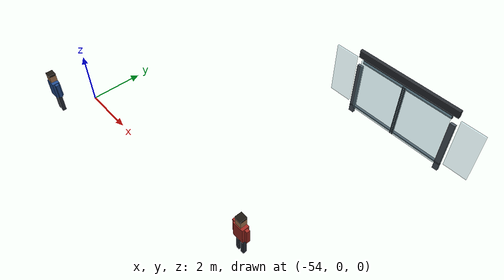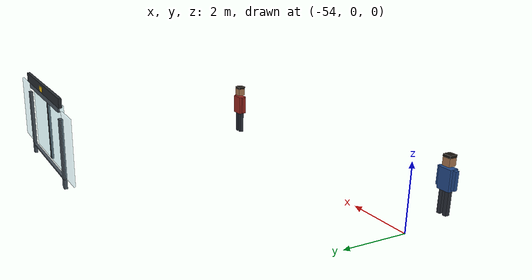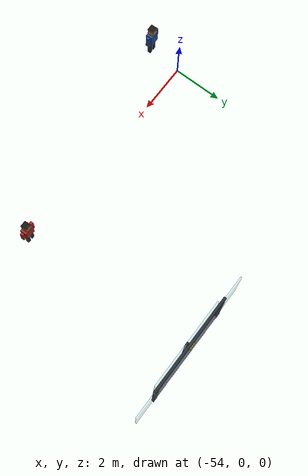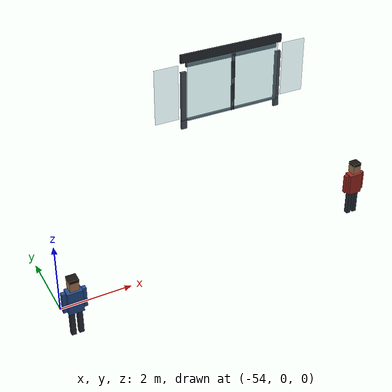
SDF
<sdf version="1.8">
 <world name="metro_station">
  <model name="psd_unit_02">
   <static>true</static>
   <pose>-45.0 0 0 0 0 0</pose>
   <link name="psd_frame_02">
    <collision name="psd_post_left_col_02">
     <pose>-1.90 7.02 1.10 0 0 0</pose>
     <geometry><box><size>0.20 0.10 2.20</size></box></geometry>
    </collision>
    <collision name="psd_post_right_col_02">
     <pose>1.90 7.02 1.10 0 0 0</pose>
     <geometry><box><size>0.20 0.10 2.20</size></box></geometry>
    </collision>
    <collision name="psd_header_col_02">
     <pose>0 7.02 2.70 0 0 0</pose>
     <geometry><box><size>4.00 0.10 0.30</size></box></geometry>
    </collision>
    <collision name="psd_threshold_col_02">
     <pose>0 7.02 0.325 0 0 0</pose>
     <geometry><box><size>4.00 0.10 0.05</size></box></geometry>
    </collision>
    <visual name="psd_post_left_vis_02">
     <pose>-1.90 7.02 1.10 0 0 0</pose>
     <geometry><box><size>0.20 0.10 2.20</size></box></geometry>
     <material>
      <ambient>0.22 0.25 0.28 1</ambient>
      <diffuse>0.30 0.34 0.38 1</diffuse>
      <specular>0.35 0.35 0.35 1</specular>
     </material>
    </visual>
    <visual name="psd_post_right_vis_02">
     <pose>1.90 7.02 1.10 0 0 0</pose>
     <geometry><box><size>0.20 0.10 2.20</size></box></geometry>
     <material>
      <ambient>0.22 0.25 0.28 1</ambient>
      <diffuse>0.30 0.34 0.38 1</diffuse>
      <specular>0.35 0.35 0.35 1</specular>
     </material>
    </visual>
    <visual name="psd_header_vis_02">
     <pose>0 7.02 2.70 0 0 0</pose>
     <geometry><box><size>4.00 0.10 0.30</size></box></geometry>
     <material><ambient>0.10 0.12 0.14 1</ambient><diffuse>0.16 0.18 0.20 1</diffuse></material>
    </visual>
    <visual name="psd_threshold_vis_02">
     <pose>0 7.02 0.325 0 0 0</pose>
     <geometry><box><size>4.00 0.10 0.05</size></box></geometry>
     <material>
      <ambient>0.22 0.25 0.28 1</ambient>
      <diffuse>0.30 0.34 0.38 1</diffuse>
      <specular>0.35 0.35 0.35 1</specular>
     </material>
    </visual>
    <visual name="psd_glass_left_vis_02">
     <pose>-2.55 7.02 1.45 0 0 0</pose>
     <transparency>0.65</transparency>
     <geometry><box><size>0.90 0.05 2.05</size></box></geometry>
     <material><ambient>0.55 0.75 0.82 1</ambient><diffuse>0.65 0.85 0.92 1</diffuse></material>
    </visual>
    <visual name="psd_glass_right_vis_02">
     <pose>2.55 7.02 1.45 0 0 0</pose>
     <transparency>0.65</transparency>
     <geometry><box><size>0.90 0.05 2.05</size></box></geometry>
     <material><ambient>0.55 0.75 0.82 1</ambient><diffuse>0.65 0.85 0.92 1</diffuse></material>
    </visual>
    <visual name="psd_unit_label_vis_02">
     <pose>0 7.10 2.70 0 0 0</pose>
     <geometry><box><size>0.30 0.02 0.16</size></box></geometry>
     <material>
      <ambient>0.95 0.72 0.04 1</ambient>
      <diffuse>0.98 0.78 0.08 1</diffuse>
      <emissive>0.35 0.25 0.02 1</emissive>
     </material>
    </visual>
    <visual name="psd_upper_panel_vis_02">
     <pose>0 7.02 2.46 0 0 0</pose>
     <geometry><box><size>3.60 0.06 0.18</size></box></geometry>
     <material>
      <ambient>0.22 0.25 0.28 1</ambient>
      <diffuse>0.30 0.34 0.38 1</diffuse>
      <specular>0.35 0.35 0.35 1</specular>
     </material>
    </visual>
   </link>
  </model>
  <model name="psd_door_02">
   <static>false</static>
   <allow_auto_disable>false</allow_auto_disable>
   <pose>-45.0 0 0 0 0 0</pose>
   <link name="psd_base_02">
    <inertial>
     <mass>1.0</mass>
     <inertia><ixx>0.001</ixx><ixy>0</ixy><ixz>0</ixz><iyy>0.001</iyy><iyz>0</iyz><izz>0.001</izz></inertia>
    </inertial>
   </link>
   <link name="psd_left_02">
    <pose>-0.90 6.90 1.45 0 0 0</pose>
    <inertial>
     <mass>120.0</mass>
     <inertia><ixx>48.436</ixx><ixy>0</ixy><ixz>0</ixz><iyy>80.800</iyy><iyz>0</iyz><izz>32.436</izz></inertia>
    </inertial>
    <collision name="psd_left_col_02"><geometry><box><size>1.80 0.06 2.20</size></box></geometry></collision>
    <visual name="psd_left_vis_02">
     <transparency>0.6</transparency>
     <geometry><box><size>1.80 0.06 2.20</size></box></geometry>
     <material><ambient>0.55 0.78 0.85 1</ambient><diffuse>0.65 0.88 0.95 1</diffuse></material>
    </visual>
    <visual name="psd_left_edge_vis_02">
     <pose>0.86 0 0 0 0 0</pose>
     <geometry><box><size>0.03 0.08 2.20</size></box></geometry>
     <material><ambient>0.15 0.18 0.20 1</ambient><diffuse>0.22 0.25 0.28 1</diffuse></material>
    </visual>
   </link>
   <link name="psd_right_02">
    <pose>0.90 6.90 1.45 0 0 0</pose>
    <inertial>
     <mass>120.0</mass>
     <inertia><ixx>48.436</ixx><ixy>0</ixy><ixz>0</ixz><iyy>80.800</iyy><iyz>0</iyz><izz>32.436</izz></inertia>
    </inertial>
    <collision name="psd_right_col_02"><geometry><box><size>1.80 0.06 2.20</size></box></geometry></collision>
    <visual name="psd_right_vis_02">
     <transparency>0.6</transparency>
     <geometry><box><size>1.80 0.06 2.20</size></box></geometry>
     <material><ambient>0.55 0.78 0.85 1</ambient><diffuse>0.65 0.88 0.95 1</diffuse></material>
    </visual>
    <visual name="psd_right_edge_vis_02">
     <pose>-0.86 0 0 0 0 0</pose>
     <geometry><box><size>0.03 0.08 2.20</size></box></geometry>
     <material><ambient>0.15 0.18 0.20 1</ambient><diffuse>0.22 0.25 0.28 1</diffuse></material>
    </visual>
   </link>
   <joint name="psd_base_fixed_02" type="fixed"><parent>world</parent><child>psd_base_02</child></joint>
   <joint name="psd_left_joint_02" type="prismatic">
    <parent>psd_base_02</parent>
    <child>psd_left_02</child>
    <axis>
     <xyz>1 0 0</xyz>
     <limit><lower>-1.80</lower><upper>0.0</upper><effort>5000.0</effort><velocity>1.0</velocity></limit>
     <dynamics><damping>2.0</damping><friction>0.2</friction></dynamics>
    </axis>
   </joint>
   <joint name="psd_right_joint_02" type="prismatic">
    <parent>psd_base_02</parent>
    <child>psd_right_02</child>
    <axis>
     <xyz>1 0 0</xyz>
     <limit><lower>0.0</lower><upper>1.80</upper><effort>5000.0</effort><velocity>1.0</velocity></limit>
     <dynamics><damping>2.0</damping><friction>0.2</friction></dynamics>
    </axis>
   </joint>
  </model>
  <model name="passenger_01">
   <static>true</static>
   <allow_auto_disable>false</allow_auto_disable>
   <pose>-54.0 -1.30 0.30 0 0 0</pose>
   <link name="passenger_body_01">
    <visual name="leg_left_01">
     <pose>-0.10 0 0.36 0 0 0</pose>
     <geometry><box><size>0.12 0.13 0.72</size></box></geometry>
     <material><ambient>0.10 0.12 0.16 1</ambient><diffuse>0.16 0.18 0.22 1</diffuse></material>
    </visual>
    <visual name="leg_right_01">
     <pose>0.10 0 0.36 0 0 0</pose>
     <geometry><box><size>0.12 0.13 0.72</size></box></geometry>
     <material><ambient>0.10 0.12 0.16 1</ambient><diffuse>0.16 0.18 0.22 1</diffuse></material>
    </visual>
    <visual name="torso_01">
     <pose>0 0 1.02 0 0 0</pose>
     <geometry><box><size>0.40 0.26 0.62</size></box></geometry>
     <material><ambient>0.10 0.22 0.42 1</ambient><diffuse>0.14 0.30 0.56 1</diffuse></material>
    </visual>
    <visual name="head_01">
     <pose>0 0 1.52 0 0 0</pose>
     <geometry><box><size>0.24 0.24 0.28</size></box></geometry>
     <material><ambient>0.55 0.38 0.26 1</ambient><diffuse>0.68 0.48 0.33 1</diffuse></material>
    </visual>
    <visual name="hair_01">
     <pose>0 0 1.66 0 0 0</pose>
     <geometry><box><size>0.25 0.25 0.08</size></box></geometry>
     <material><ambient>0.06 0.05 0.04 1</ambient><diffuse>0.10 0.08 0.06 1</diffuse></material>
    </visual>
    <visual name="arm_left_01">
     <pose>-0.26 0 1.04 0 0 0</pose>
     <geometry><box><size>0.10 0.12 0.55</size></box></geometry>
     <material><ambient>0.10 0.22 0.42 1</ambient><diffuse>0.14 0.30 0.56 1</diffuse></material>
    </visual>
    <visual name="arm_right_01">
     <pose>0.26 0 1.04 0 0 0</pose>
     <geometry><box><size>0.10 0.12 0.55</size></box></geometry>
     <material><ambient>0.10 0.22 0.42 1</ambient><diffuse>0.14 0.30 0.56 1</diffuse></material>
    </visual>
   </link>
  </model>
  <model name="passenger_02">
   <static>true</static>
   <allow_auto_disable>false</allow_auto_disable>
   <pose>-45.0 -0.20 0.30 0 0 0</pose>
   <link name="passenger_body_02">
    <visual name="leg_left_02">
     <pose>-0.10 0 0.36 0 0 0</pose>
     <geometry><box><size>0.12 0.13 0.72</size></box></geometry>
     <material><ambient>0.10 0.12 0.16 1</ambient><diffuse>0.16 0.18 0.22 1</diffuse></material>
    </visual>
    <visual name="leg_right_02">
     <pose>0.10 0 0.36 0 0 0</pose>
     <geometry><box><size>0.12 0.13 0.72</size></box></geometry>
     <material><ambient>0.10 0.12 0.16 1</ambient><diffuse>0.16 0.18 0.22 1</diffuse></material>
    </visual>
    <visual name="torso_02">
     <pose>0 0 1.02 0 0 0</pose>
     <geometry><box><size>0.40 0.26 0.62</size></box></geometry>
     <material><ambient>0.48 0.12 0.10 1</ambient><diffuse>0.62 0.16 0.13 1</diffuse></material>
    </visual>
    <visual name="head_02">
     <pose>0 0 1.52 0 0 0</pose>
     <geometry><box><size>0.24 0.24 0.28</size></box></geometry>
     <material><ambient>0.55 0.38 0.26 1</ambient><diffuse>0.68 0.48 0.33 1</diffuse></material>
    </visual>
    <visual name="hair_02">
     <pose>0 0 1.66 0 0 0</pose>
     <geometry><box><size>0.25 0.25 0.08</size></box></geometry>
     <material><ambient>0.06 0.05 0.04 1</ambient><diffuse>0.10 0.08 0.06 1</diffuse></material>
    </visual>
    <visual name="arm_left_02">
     <pose>-0.26 0 1.04 0 0 0</pose>
     <geometry><box><size>0.10 0.12 0.55</size></box></geometry>
     <material><ambient>0.48 0.12 0.10 1</ambient><diffuse>0.62 0.16 0.13 1</diffuse></material>
    </visual>
    <visual name="arm_right_02">
     <pose>0.26 0 1.04 0 0 0</pose>
     <geometry><box><size>0.10 0.12 0.55</size></box></geometry>
     <material><ambient>0.48 0.12 0.10 1</ambient><diffuse>0.62 0.16 0.13 1</diffuse></material>
    </visual>
   </link>
  </model>
 </world>
</sdf>
